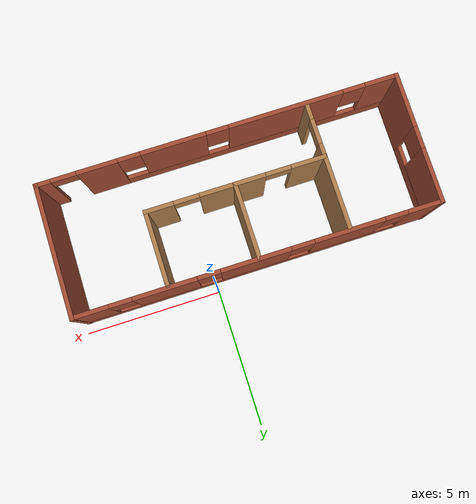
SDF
<?xml version='1.0'?>
<sdf version='1.6'>
  <model name='model'>
    <pose frame=''>-1.6235 -2.73899 0 0 -0 0</pose>
    <link name='Wall_43'>
      <pose frame=''>-6.42516 0.0001 0 0 -0 1.56333</pose>
      <visual name='Wall_43_Visual_0'>
        <pose frame=''>-1.39949 0 1.25 0 -0 0</pose>
        <geometry>
          <box>
            <size>1.99898 0.15 2.5</size>
          </box>
        </geometry>
        <material>
          <script>
            <uri>file://media/materials/scripts/gazebo.material</uri>
            <name>Gazebo/Bricks</name>
          </script>
          <ambient>1 1 1 1</ambient>
        </material>
        <meta>
          <layer>0</layer>
        </meta>
      </visual>
      <collision name='Wall_43_Collision_0'>
        <geometry>
          <box>
            <size>1.99898 0.15 2.5</size>
          </box>
        </geometry>
        <pose frame=''>-1.39949 0 1.25 0 -0 0</pose>
      </collision>
      <visual name='Wall_43_Visual_1'>
        <pose frame=''>0.999489 0 0.25 0 -0 0</pose>
        <geometry>
          <box>
            <size>2.79898 0.15 0.5</size>
          </box>
        </geometry>
        <material>
          <script>
            <uri>file://media/materials/scripts/gazebo.material</uri>
            <name>Gazebo/Bricks</name>
          </script>
          <ambient>1 1 1 1</ambient>
        </material>
        <meta>
          <layer>0</layer>
        </meta>
      </visual>
      <collision name='Wall_43_Collision_1'>
        <geometry>
          <box>
            <size>2.79898 0.15 0.5</size>
          </box>
        </geometry>
        <pose frame=''>0.999489 0 0.25 0 -0 0</pose>
      </collision>
      <visual name='Wall_43_Visual_2'>
        <pose frame=''>1.39949 0 1.5 0 -0 0</pose>
        <geometry>
          <box>
            <size>1.99898 0.15 2</size>
          </box>
        </geometry>
        <material>
          <script>
            <uri>file://media/materials/scripts/gazebo.material</uri>
            <name>Gazebo/Bricks</name>
          </script>
          <ambient>1 1 1 1</ambient>
        </material>
        <meta>
          <layer>0</layer>
        </meta>
      </visual>
      <collision name='Wall_43_Collision_2'>
        <geometry>
          <box>
            <size>1.99898 0.15 2</size>
          </box>
        </geometry>
        <pose frame=''>1.39949 0 1.5 0 -0 0</pose>
      </collision>
      <visual name='Wall_43_Visual_3'>
        <pose frame=''>0 0 1.9 0 -0 0</pose>
        <geometry>
          <box>
            <size>0.8 0.15 1.2</size>
          </box>
        </geometry>
        <material>
          <script>
            <uri>file://media/materials/scripts/gazebo.material</uri>
            <name>Gazebo/Bricks</name>
          </script>
          <ambient>1 1 1 1</ambient>
        </material>
        <meta>
          <layer>0</layer>
        </meta>
      </visual>
      <collision name='Wall_43_Collision_3'>
        <geometry>
          <box>
            <size>0.8 0.15 1.2</size>
          </box>
        </geometry>
        <pose frame=''>0 0 1.9 0 -0 0</pose>
      </collision>
    </link>
    <link name='Wall_44'>
      <pose frame=''>0.017345 2.31534 0 0 0 -2.7e-05</pose>
      <visual name='Wall_44_Visual_0'>
        <pose frame=''>-5.85756 0 1.25 0 -0 0</pose>
        <geometry>
          <box>
            <size>1.28489 0.15 2.5</size>
          </box>
        </geometry>
        <material>
          <script>
            <uri>file://media/materials/scripts/gazebo.material</uri>
            <name>Gazebo/Bricks</name>
          </script>
          <ambient>1 1 1 1</ambient>
        </material>
        <meta>
          <layer>0</layer>
        </meta>
      </visual>
      <collision name='Wall_44_Collision_0'>
        <geometry>
          <box>
            <size>1.28489 0.15 2.5</size>
          </box>
        </geometry>
        <pose frame=''>-5.85756 0 1.25 0 -0 0</pose>
      </collision>
      <visual name='Wall_44_Visual_1'>
        <pose frame=''>0.642443 0 0.25 0 -0 0</pose>
        <geometry>
          <box>
            <size>11.7151 0.15 0.5</size>
          </box>
        </geometry>
        <material>
          <script>
            <uri>file://media/materials/scripts/gazebo.material</uri>
            <name>Gazebo/Bricks</name>
          </script>
          <ambient>1 1 1 1</ambient>
        </material>
        <meta>
          <layer>0</layer>
        </meta>
      </visual>
      <collision name='Wall_44_Collision_1'>
        <geometry>
          <box>
            <size>11.7151 0.15 0.5</size>
          </box>
        </geometry>
        <pose frame=''>0.642443 0 0.25 0 -0 0</pose>
      </collision>
      <visual name='Wall_44_Visual_2'>
        <pose frame=''>-3.17008 0 1.5 0 -0 0</pose>
        <geometry>
          <box>
            <size>2.49008 0.15 2</size>
          </box>
        </geometry>
        <material>
          <script>
            <uri>file://media/materials/scripts/gazebo.material</uri>
            <name>Gazebo/Bricks</name>
          </script>
          <ambient>1 1 1 1</ambient>
        </material>
        <meta>
          <layer>0</layer>
        </meta>
      </visual>
      <collision name='Wall_44_Collision_2'>
        <geometry>
          <box>
            <size>2.49008 0.15 2</size>
          </box>
        </geometry>
        <pose frame=''>-3.17008 0 1.5 0 -0 0</pose>
      </collision>
      <visual name='Wall_44_Visual_3'>
        <pose frame=''>0.110003 0 1.5 0 -0 0</pose>
        <geometry>
          <box>
            <size>2.47008 0.15 2</size>
          </box>
        </geometry>
        <material>
          <script>
            <uri>file://media/materials/scripts/gazebo.material</uri>
            <name>Gazebo/Bricks</name>
          </script>
          <ambient>1 1 1 1</ambient>
        </material>
        <meta>
          <layer>0</layer>
        </meta>
      </visual>
      <collision name='Wall_44_Collision_3'>
        <geometry>
          <box>
            <size>2.47008 0.15 2</size>
          </box>
        </geometry>
        <pose frame=''>0.110003 0 1.5 0 -0 0</pose>
      </collision>
      <visual name='Wall_44_Visual_4'>
        <pose frame=''>3.26008 0 1.5 0 -0 0</pose>
        <geometry>
          <box>
            <size>2.23007 0.15 2</size>
          </box>
        </geometry>
        <material>
          <script>
            <uri>file://media/materials/scripts/gazebo.material</uri>
            <name>Gazebo/Bricks</name>
          </script>
          <ambient>1 1 1 1</ambient>
        </material>
        <meta>
          <layer>0</layer>
        </meta>
      </visual>
      <collision name='Wall_44_Collision_4'>
        <geometry>
          <box>
            <size>2.23007 0.15 2</size>
          </box>
        </geometry>
        <pose frame=''>3.26008 0 1.5 0 -0 0</pose>
      </collision>
      <visual name='Wall_44_Visual_5'>
        <pose frame=''>5.83756 0 1.5 0 -0 0</pose>
        <geometry>
          <box>
            <size>1.32489 0.15 2</size>
          </box>
        </geometry>
        <material>
          <script>
            <uri>file://media/materials/scripts/gazebo.material</uri>
            <name>Gazebo/Bricks</name>
          </script>
          <ambient>1 1 1 1</ambient>
        </material>
        <meta>
          <layer>0</layer>
        </meta>
      </visual>
      <collision name='Wall_44_Collision_5'>
        <geometry>
          <box>
            <size>1.32489 0.15 2</size>
          </box>
        </geometry>
        <pose frame=''>5.83756 0 1.5 0 -0 0</pose>
      </collision>
      <visual name='Wall_44_Visual_6'>
        <pose frame=''>-4.81511 0 1.9 0 -0 0</pose>
        <geometry>
          <box>
            <size>0.8 0.15 1.2</size>
          </box>
        </geometry>
        <material>
          <script>
            <uri>file://media/materials/scripts/gazebo.material</uri>
            <name>Gazebo/Bricks</name>
          </script>
          <ambient>1 1 1 1</ambient>
        </material>
        <meta>
          <layer>0</layer>
        </meta>
      </visual>
      <collision name='Wall_44_Collision_6'>
        <geometry>
          <box>
            <size>0.8 0.15 1.2</size>
          </box>
        </geometry>
        <pose frame=''>-4.81511 0 1.9 0 -0 0</pose>
      </collision>
      <visual name='Wall_44_Visual_7'>
        <pose frame=''>-1.52504 0 1.9 0 -0 0</pose>
        <geometry>
          <box>
            <size>0.8 0.15 1.2</size>
          </box>
        </geometry>
        <material>
          <script>
            <uri>file://media/materials/scripts/gazebo.material</uri>
            <name>Gazebo/Bricks</name>
          </script>
          <ambient>1 1 1 1</ambient>
        </material>
        <meta>
          <layer>0</layer>
        </meta>
      </visual>
      <collision name='Wall_44_Collision_7'>
        <geometry>
          <box>
            <size>0.8 0.15 1.2</size>
          </box>
        </geometry>
        <pose frame=''>-1.52504 0 1.9 0 -0 0</pose>
      </collision>
      <visual name='Wall_44_Visual_8'>
        <pose frame=''>1.74504 0 1.9 0 -0 0</pose>
        <geometry>
          <box>
            <size>0.8 0.15 1.2</size>
          </box>
        </geometry>
        <material>
          <script>
            <uri>file://media/materials/scripts/gazebo.material</uri>
            <name>Gazebo/Bricks</name>
          </script>
          <ambient>1 1 1 1</ambient>
        </material>
        <meta>
          <layer>0</layer>
        </meta>
      </visual>
      <collision name='Wall_44_Collision_8'>
        <geometry>
          <box>
            <size>0.8 0.15 1.2</size>
          </box>
        </geometry>
        <pose frame=''>1.74504 0 1.9 0 -0 0</pose>
      </collision>
      <visual name='Wall_44_Visual_9'>
        <pose frame=''>4.77511 0 1.9 0 -0 0</pose>
        <geometry>
          <box>
            <size>0.8 0.15 1.2</size>
          </box>
        </geometry>
        <material>
          <script>
            <uri>file://media/materials/scripts/gazebo.material</uri>
            <name>Gazebo/Bricks</name>
          </script>
          <ambient>1 1 1 1</ambient>
        </material>
        <meta>
          <layer>0</layer>
        </meta>
      </visual>
      <collision name='Wall_44_Collision_9'>
        <geometry>
          <box>
            <size>0.8 0.15 1.2</size>
          </box>
        </geometry>
        <pose frame=''>4.77511 0 1.9 0 -0 0</pose>
      </collision>
    </link>
    <link name='Wall_46'>
      <pose frame=''>-0.017503 -2.32401 0 0 -0 3.14159</pose>
      <visual name='Wall_46_Visual_0'>
        <pose frame=''>-6.20815 0 1.25 0 -0 0</pose>
        <geometry>
          <box>
            <size>0.583696 0.15 2.5</size>
          </box>
        </geometry>
        <material>
          <script>
            <uri>file://media/materials/scripts/gazebo.material</uri>
            <name>Gazebo/Bricks</name>
          </script>
          <ambient>1 1 1 1</ambient>
        </material>
        <meta>
          <layer>0</layer>
        </meta>
      </visual>
      <collision name='Wall_46_Collision_0'>
        <geometry>
          <box>
            <size>0.583696 0.15 2.5</size>
          </box>
        </geometry>
        <pose frame=''>-6.20815 0 1.25 0 -0 0</pose>
      </collision>
      <visual name='Wall_46_Visual_1'>
        <pose frame=''>-4.29565 0 1.25 0 -0 0</pose>
        <geometry>
          <box>
            <size>1.4413 0.15 2.5</size>
          </box>
        </geometry>
        <material>
          <script>
            <uri>file://media/materials/scripts/gazebo.material</uri>
            <name>Gazebo/Bricks</name>
          </script>
          <ambient>1 1 1 1</ambient>
        </material>
        <meta>
          <layer>0</layer>
        </meta>
      </visual>
      <collision name='Wall_46_Collision_1'>
        <geometry>
          <box>
            <size>1.4413 0.15 2.5</size>
          </box>
        </geometry>
        <pose frame=''>-4.29565 0 1.25 0 -0 0</pose>
      </collision>
      <visual name='Wall_46_Visual_2'>
        <pose frame=''>1.4625 0 0.25 0 -0 0</pose>
        <geometry>
          <box>
            <size>10.075 0.15 0.5</size>
          </box>
        </geometry>
        <material>
          <script>
            <uri>file://media/materials/scripts/gazebo.material</uri>
            <name>Gazebo/Bricks</name>
          </script>
          <ambient>1 1 1 1</ambient>
        </material>
        <meta>
          <layer>0</layer>
        </meta>
      </visual>
      <collision name='Wall_46_Collision_2'>
        <geometry>
          <box>
            <size>10.075 0.15 0.5</size>
          </box>
        </geometry>
        <pose frame=''>1.4625 0 0.25 0 -0 0</pose>
      </collision>
      <visual name='Wall_46_Visual_3'>
        <pose frame=''>-1.61 0 1.5 0 -0 0</pose>
        <geometry>
          <box>
            <size>2.33 0.15 2</size>
          </box>
        </geometry>
        <material>
          <script>
            <uri>file://media/materials/scripts/gazebo.material</uri>
            <name>Gazebo/Bricks</name>
          </script>
          <ambient>1 1 1 1</ambient>
        </material>
        <meta>
          <layer>0</layer>
        </meta>
      </visual>
      <collision name='Wall_46_Collision_3'>
        <geometry>
          <box>
            <size>2.33 0.15 2</size>
          </box>
        </geometry>
        <pose frame=''>-1.61 0 1.5 0 -0 0</pose>
      </collision>
      <visual name='Wall_46_Visual_4'>
        <pose frame=''>2.415 0 1.5 0 -0 0</pose>
        <geometry>
          <box>
            <size>4.12 0.15 2</size>
          </box>
        </geometry>
        <material>
          <script>
            <uri>file://media/materials/scripts/gazebo.material</uri>
            <name>Gazebo/Bricks</name>
          </script>
          <ambient>1 1 1 1</ambient>
        </material>
        <meta>
          <layer>0</layer>
        </meta>
      </visual>
      <collision name='Wall_46_Collision_4'>
        <geometry>
          <box>
            <size>4.12 0.15 2</size>
          </box>
        </geometry>
        <pose frame=''>2.415 0 1.5 0 -0 0</pose>
      </collision>
      <visual name='Wall_46_Visual_5'>
        <pose frame=''>5.8875 0 1.5 0 -0 0</pose>
        <geometry>
          <box>
            <size>1.225 0.15 2</size>
          </box>
        </geometry>
        <material>
          <script>
            <uri>file://media/materials/scripts/gazebo.material</uri>
            <name>Gazebo/Bricks</name>
          </script>
          <ambient>1 1 1 1</ambient>
        </material>
        <meta>
          <layer>0</layer>
        </meta>
      </visual>
      <collision name='Wall_46_Collision_5'>
        <geometry>
          <box>
            <size>1.225 0.15 2</size>
          </box>
        </geometry>
        <pose frame=''>5.8875 0 1.5 0 -0 0</pose>
      </collision>
      <visual name='Wall_46_Visual_6'>
        <pose frame=''>-3.175 0 1.9 0 -0 0</pose>
        <geometry>
          <box>
            <size>0.8 0.15 1.2</size>
          </box>
        </geometry>
        <material>
          <script>
            <uri>file://media/materials/scripts/gazebo.material</uri>
            <name>Gazebo/Bricks</name>
          </script>
          <ambient>1 1 1 1</ambient>
        </material>
        <meta>
          <layer>0</layer>
        </meta>
      </visual>
      <collision name='Wall_46_Collision_6'>
        <geometry>
          <box>
            <size>0.8 0.15 1.2</size>
          </box>
        </geometry>
        <pose frame=''>-3.175 0 1.9 0 -0 0</pose>
      </collision>
      <visual name='Wall_46_Visual_7'>
        <pose frame=''>-0.045 0 1.9 0 -0 0</pose>
        <geometry>
          <box>
            <size>0.8 0.15 1.2</size>
          </box>
        </geometry>
        <material>
          <script>
            <uri>file://media/materials/scripts/gazebo.material</uri>
            <name>Gazebo/Bricks</name>
          </script>
          <ambient>1 1 1 1</ambient>
        </material>
        <meta>
          <layer>0</layer>
        </meta>
      </visual>
      <collision name='Wall_46_Collision_7'>
        <geometry>
          <box>
            <size>0.8 0.15 1.2</size>
          </box>
        </geometry>
        <pose frame=''>-0.045 0 1.9 0 -0 0</pose>
      </collision>
      <visual name='Wall_46_Visual_8'>
        <pose frame=''>4.875 0 1.9 0 -0 0</pose>
        <geometry>
          <box>
            <size>0.8 0.15 1.2</size>
          </box>
        </geometry>
        <material>
          <script>
            <uri>file://media/materials/scripts/gazebo.material</uri>
            <name>Gazebo/Bricks</name>
          </script>
          <ambient>1 1 1 1</ambient>
        </material>
        <meta>
          <layer>0</layer>
        </meta>
      </visual>
      <collision name='Wall_46_Collision_8'>
        <geometry>
          <box>
            <size>0.8 0.15 1.2</size>
          </box>
        </geometry>
        <pose frame=''>4.875 0 1.9 0 -0 0</pose>
      </collision>
      <visual name='Wall_46_Visual_9'>
        <pose frame=''>-5.4663 0 2.25 0 -0 0</pose>
        <geometry>
          <box>
            <size>0.9 0.15 0.5</size>
          </box>
        </geometry>
        <material>
          <script>
            <uri>file://media/materials/scripts/gazebo.material</uri>
            <name>Gazebo/Bricks</name>
          </script>
          <ambient>1 1 1 1</ambient>
        </material>
        <meta>
          <layer>0</layer>
        </meta>
      </visual>
      <collision name='Wall_46_Collision_9'>
        <geometry>
          <box>
            <size>0.9 0.15 0.5</size>
          </box>
        </geometry>
        <pose frame=''>-5.4663 0 2.25 0 -0 0</pose>
      </collision>
    </link>
    <link name='Wall_48'>
      <pose frame=''>-3.1662 -0.011487 0 0 0 -1.5708</pose>
      <visual name='Wall_48_Visual_0'>
        <pose frame=''>-0.747143 0 1.25 0 -0 0</pose>
        <geometry>
          <box>
            <size>3.08571 0.15 2.5</size>
          </box>
        </geometry>
        <material>
          <script>
            <uri>file://media/materials/scripts/gazebo.material</uri>
            <name>Gazebo/Wood</name>
          </script>
          <ambient>1 1 1 1</ambient>
        </material>
        <meta>
          <layer>0</layer>
        </meta>
      </visual>
      <collision name='Wall_48_Collision_0'>
        <geometry>
          <box>
            <size>3.08571 0.15 2.5</size>
          </box>
        </geometry>
        <pose frame=''>-0.747143 0 1.25 0 -0 0</pose>
      </collision>
      <visual name='Wall_48_Visual_1'>
        <pose frame=''>1.99286 0 1.25 0 -0 0</pose>
        <geometry>
          <box>
            <size>0.594287 0.15 2.5</size>
          </box>
        </geometry>
        <material>
          <script>
            <uri>file://media/materials/scripts/gazebo.material</uri>
            <name>Gazebo/Wood</name>
          </script>
          <ambient>1 1 1 1</ambient>
        </material>
        <meta>
          <layer>0</layer>
        </meta>
      </visual>
      <collision name='Wall_48_Collision_1'>
        <geometry>
          <box>
            <size>0.594287 0.15 2.5</size>
          </box>
        </geometry>
        <pose frame=''>1.99286 0 1.25 0 -0 0</pose>
      </collision>
      <visual name='Wall_48_Visual_2'>
        <pose frame=''>1.24571 0 2.25 0 -0 0</pose>
        <geometry>
          <box>
            <size>0.9 0.15 0.5</size>
          </box>
        </geometry>
        <material>
          <script>
            <uri>file://media/materials/scripts/gazebo.material</uri>
            <name>Gazebo/Wood</name>
          </script>
          <ambient>1 1 1 1</ambient>
        </material>
        <meta>
          <layer>0</layer>
        </meta>
      </visual>
      <collision name='Wall_48_Collision_2'>
        <geometry>
          <box>
            <size>0.9 0.15 0.5</size>
          </box>
        </geometry>
        <pose frame=''>1.24571 0 2.25 0 -0 0</pose>
      </collision>
    </link>
    <link name='Wall_50'>
      <pose frame=''>0.005193 -0.339856 0 0 0 -4.8e-05</pose>
      <visual name='Wall_50_Visual_0'>
        <pose frame=''>-2.59718 0 1.25 0 -0 0</pose>
        <geometry>
          <box>
            <size>1.26425 0.15 2.5</size>
          </box>
        </geometry>
        <material>
          <script>
            <uri>file://media/materials/scripts/gazebo.material</uri>
            <name>Gazebo/Wood</name>
          </script>
          <ambient>1 1 1 1</ambient>
        </material>
        <meta>
          <layer>0</layer>
        </meta>
      </visual>
      <collision name='Wall_50_Collision_0'>
        <geometry>
          <box>
            <size>1.26425 0.15 2.5</size>
          </box>
        </geometry>
        <pose frame=''>-2.59718 0 1.25 0 -0 0</pose>
      </collision>
      <visual name='Wall_50_Visual_1'>
        <pose frame=''>0.104316 0 1.25 0 -0 0</pose>
        <geometry>
          <box>
            <size>2.33875 0.15 2.5</size>
          </box>
        </geometry>
        <material>
          <script>
            <uri>file://media/materials/scripts/gazebo.material</uri>
            <name>Gazebo/Wood</name>
          </script>
          <ambient>1 1 1 1</ambient>
        </material>
        <meta>
          <layer>0</layer>
        </meta>
      </visual>
      <collision name='Wall_50_Collision_1'>
        <geometry>
          <box>
            <size>2.33875 0.15 2.5</size>
          </box>
        </geometry>
        <pose frame=''>0.104316 0 1.25 0 -0 0</pose>
      </collision>
      <visual name='Wall_50_Visual_2'>
        <pose frame=''>2.7015 0 1.25 0 -0 0</pose>
        <geometry>
          <box>
            <size>1.05561 0.15 2.5</size>
          </box>
        </geometry>
        <material>
          <script>
            <uri>file://media/materials/scripts/gazebo.material</uri>
            <name>Gazebo/Wood</name>
          </script>
          <ambient>1 1 1 1</ambient>
        </material>
        <meta>
          <layer>0</layer>
        </meta>
      </visual>
      <collision name='Wall_50_Collision_2'>
        <geometry>
          <box>
            <size>1.05561 0.15 2.5</size>
          </box>
        </geometry>
        <pose frame=''>2.7015 0 1.25 0 -0 0</pose>
      </collision>
      <visual name='Wall_50_Visual_3'>
        <pose frame=''>-1.51506 0 2.25 0 -0 0</pose>
        <geometry>
          <box>
            <size>0.9 0.15 0.5</size>
          </box>
        </geometry>
        <material>
          <script>
            <uri>file://media/materials/scripts/gazebo.material</uri>
            <name>Gazebo/Wood</name>
          </script>
          <ambient>1 1 1 1</ambient>
        </material>
        <meta>
          <layer>0</layer>
        </meta>
      </visual>
      <collision name='Wall_50_Collision_3'>
        <geometry>
          <box>
            <size>0.9 0.15 0.5</size>
          </box>
        </geometry>
        <pose frame=''>-1.51506 0 2.25 0 -0 0</pose>
      </collision>
      <visual name='Wall_50_Visual_4'>
        <pose frame=''>1.72369 0 2.25 0 -0 0</pose>
        <geometry>
          <box>
            <size>0.9 0.15 0.5</size>
          </box>
        </geometry>
        <material>
          <script>
            <uri>file://media/materials/scripts/gazebo.material</uri>
            <name>Gazebo/Wood</name>
          </script>
          <ambient>1 1 1 1</ambient>
        </material>
        <meta>
          <layer>0</layer>
        </meta>
      </visual>
      <collision name='Wall_50_Collision_4'>
        <geometry>
          <box>
            <size>0.9 0.15 0.5</size>
          </box>
        </geometry>
        <pose frame=''>1.72369 0 2.25 0 -0 0</pose>
      </collision>
    </link>
    <link name='Wall_52'>
      <collision name='Wall_52_Collision'>
        <geometry>
          <box>
            <size>0.15 0.15 2.5</size>
          </box>
        </geometry>
        <pose frame=''>0 0 1.25 0 -0 0</pose>
      </collision>
      <visual name='Wall_52_Visual'>
        <pose frame=''>0 0 1.25 0 -0 0</pose>
        <geometry>
          <box>
            <size>0.15 0.15 2.5</size>
          </box>
        </geometry>
        <material>
          <script>
            <uri>file://media/materials/scripts/gazebo.material</uri>
            <name>Gazebo/Grey</name>
          </script>
          <ambient>1 1 1 1</ambient>
        </material>
        <meta>
          <layer>0</layer>
        </meta>
      </visual>
      <pose frame=''>3.1575 2.21599 0 0 -0 0</pose>
    </link>
    <link name='Wall_55'>
      <collision name='Wall_55_Collision'>
        <geometry>
          <box>
            <size>2.75 0.15 2.5</size>
          </box>
        </geometry>
        <pose frame=''>0 0 1.25 0 -0 0</pose>
      </collision>
      <visual name='Wall_55_Visual'>
        <pose frame=''>0 0 1.25 0 -0 0</pose>
        <geometry>
          <box>
            <size>2.75 0.15 2.5</size>
          </box>
        </geometry>
        <material>
          <script>
            <uri>file://media/materials/scripts/gazebo.material</uri>
            <name>Gazebo/Wood</name>
          </script>
          <ambient>1 1 1 1</ambient>
        </material>
        <meta>
          <layer>0</layer>
        </meta>
      </visual>
      <pose frame=''>0.011323 0.965078 0 0 0 -1.5708</pose>
    </link>
    <link name='Wall_58'>
      <collision name='Wall_58_Collision'>
        <geometry>
          <box>
            <size>2.715 0.15 2.5</size>
          </box>
        </geometry>
        <pose frame=''>0 0 1.25 0 -0 0</pose>
      </collision>
      <visual name='Wall_58_Visual'>
        <pose frame=''>0 0 1.25 0 -0 0</pose>
        <geometry>
          <box>
            <size>2.715 0.15 2.5</size>
          </box>
        </geometry>
        <material>
          <script>
            <uri>file://media/materials/scripts/gazebo.material</uri>
            <name>Gazebo/Wood</name>
          </script>
          <ambient>1 1 1 1</ambient>
        </material>
        <meta>
          <layer>0</layer>
        </meta>
      </visual>
      <pose frame=''>3.1595 0.942492 0 0 -0 1.5708</pose>
    </link>
    <link name='Wall_60'>
      <collision name='Wall_60_Collision'>
        <geometry>
          <box>
            <size>4.798 0.15 2.5</size>
          </box>
        </geometry>
        <pose frame=''>0 0 1.25 0 -0 0</pose>
      </collision>
      <visual name='Wall_60_Visual'>
        <pose frame=''>0 0 1.25 0 -0 0</pose>
        <geometry>
          <box>
            <size>4.798 0.15 2.5</size>
          </box>
        </geometry>
        <material>
          <script>
            <uri>file://media/materials/scripts/gazebo.material</uri>
            <name>Gazebo/Bricks</name>
          </script>
          <ambient>1 1 1 1</ambient>
        </material>
        <meta>
          <layer>0</layer>
        </meta>
      </visual>
      <pose frame=''>6.425 -7.4e-05 0 0 0 -1.57833</pose>
    </link>
    <static>1</static>
  </model>
</sdf>
